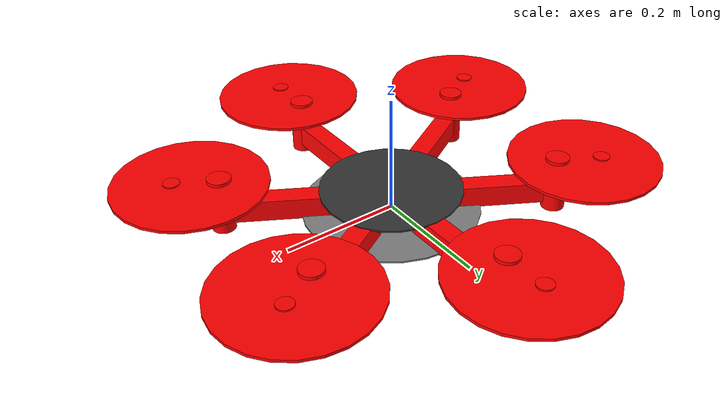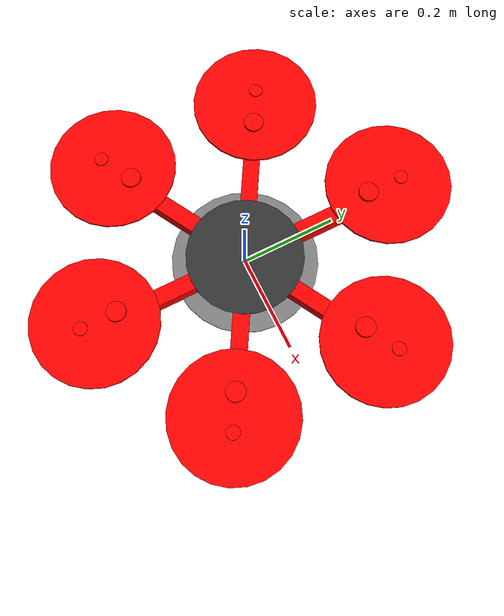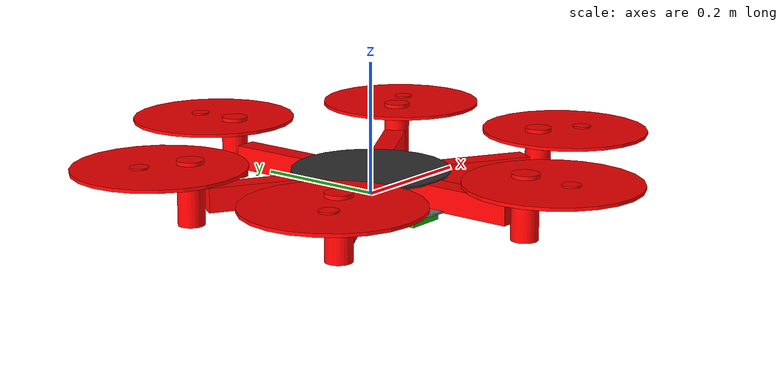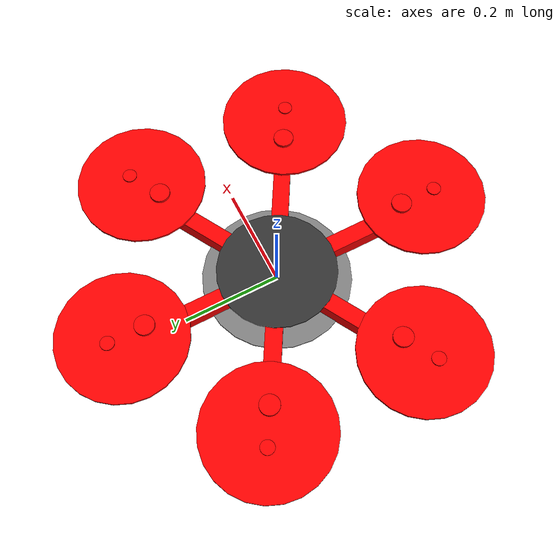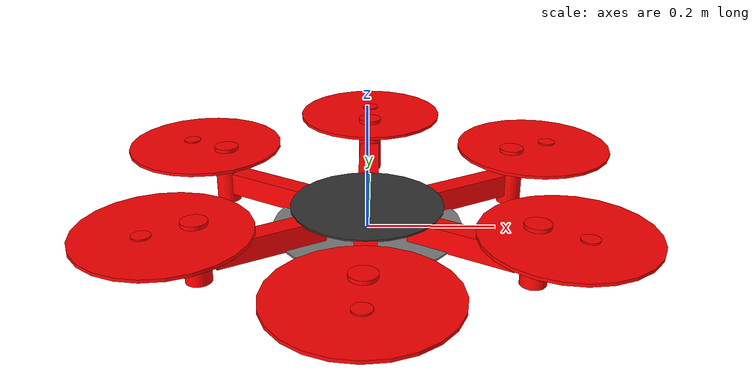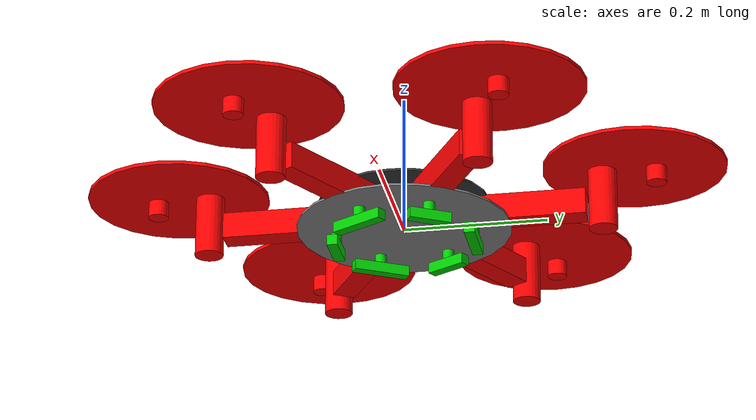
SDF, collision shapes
<?xml version="1.0" ?>
<!--F550 UAV model with Mavlink UDP port 14660-->
<sdf version='1.6'>
  <model name='f550_num2'>

<include>
      <uri>model://f550</uri>
      <name>f550</name>
      <pose>0 0 0 0 0 3.14</pose>
</include>

<plugin name='mavlink_interface' filename='librotors_gazebo_mavlink_interface.so'>
      <robotNamespace/>
      <imuSubTopic>/imu</imuSubTopic>
      <gpsSubTopic>/gps</gpsSubTopic>
      <mavlink_addr>INADDR_ANY</mavlink_addr>
      <mavlink_udp_port>14660</mavlink_udp_port>
      <motorSpeedCommandPubTopic>/gazebo/command/motor_speed</motorSpeedCommandPubTopic>
      <control_channels>
        <channel name='rotor1'>
          <input_index>0</input_index>
          <input_offset>0</input_offset>
          <input_scaling>1000</input_scaling>
          <zero_position_disarmed>0</zero_position_disarmed>
          <zero_position_armed>100</zero_position_armed>
          <joint_control_type>velocity</joint_control_type>
          <joint_name>p1</joint_name>
        </channel>
        <channel name='rotor2'>
          <input_index>1</input_index>
          <input_offset>0</input_offset>
          <input_scaling>1000</input_scaling>
          <zero_position_disarmed>0</zero_position_disarmed>
          <zero_position_armed>100</zero_position_armed>
          <joint_control_type>velocity</joint_control_type>
          <joint_name>p2</joint_name>
        </channel>
        <channel name='rotor3'>
          <input_index>2</input_index>
          <input_offset>0</input_offset>
          <input_scaling>1000</input_scaling>
          <zero_position_disarmed>0</zero_position_disarmed>
          <zero_position_armed>100</zero_position_armed>
          <joint_control_type>velocity</joint_control_type>
          <joint_name>p3</joint_name>
        </channel>
        <channel name='rotor4'>
          <input_index>3</input_index>
          <input_offset>0</input_offset>
          <input_scaling>1000</input_scaling>
          <zero_position_disarmed>0</zero_position_disarmed>
          <zero_position_armed>100</zero_position_armed>
          <joint_control_type>velocity</joint_control_type>
          <joint_name>p4</joint_name>
        </channel>
         <channel name='rotor5'>
          <input_index>4</input_index>
          <input_offset>0</input_offset>
          <input_scaling>1000</input_scaling>
          <zero_position_disarmed>0</zero_position_disarmed>
          <zero_position_armed>100</zero_position_armed>
          <joint_control_type>velocity</joint_control_type>
          <joint_name>p5</joint_name>
        </channel>
         <channel name='rotor6'>
          <input_index>5</input_index>
          <input_offset>0</input_offset>
          <input_scaling>1000</input_scaling>
          <zero_position_disarmed>0</zero_position_disarmed>
          <zero_position_armed>100</zero_position_armed>
          <joint_control_type>velocity</joint_control_type>
          <joint_name>p6</joint_name>
        </channel>
      </control_channels>
    </plugin>

    <include>
      <uri>model://wifi_reciver</uri>
      <name>wifi_rec</name>
      <pose>0 0 0 0 0 0</pose>
    </include>

    <joint name='/rx_joint' type='revolute'>
      <child>wifi_rec::link</child>
      <parent>f550::base_link</parent>
      <axis>
        <xyz>0 0 0</xyz>
        <limit>
          <upper>0</upper>
          <lower>0</lower>
        </limit>
      </axis>
    </joint>

    </model>
</sdf>

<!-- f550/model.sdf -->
<sdf version="1.9">
  <model name="f550">
    <static>false</static>
    <pose>0 0 0 0 0 0</pose>

<!-- ######################################## LOWER_PLATE # ######################################## -->
    <link name="base_link">
	<gravity>true</gravity>
	<pose>0 0 0.0015 0 0 0</pose>

      <inertial>
  <pose>0.00 0 -0.00 0 -0 0</pose>
        <mass>0.6</mass>
        <inertia>
          <ixx>0.011</ixx>
          <ixy>0</ixy>
          <ixz>0</ixz>
          <iyy>0.015</iyy>
          <iyz>0</iyz>
          <izz>0.021</izz>
        </inertia>
      </inertial>

      <collision name="base_link_collision">
        <geometry>
          <cylinder>
            <radius>0.15</radius>
            <length>0.003</length>
          </cylinder>
        </geometry>
      </collision>

      <visual name="base_link_visual">
        <geometry>
          <mesh>
            <scale>0.001 0.001 0.001</scale>
            <uri>file://f550/meshes/Lower_plate_CG.STL</uri>
          </mesh>
        </geometry>
        <material>
          <ambient>0.3 0.3 0.3 1</ambient>
          <diffuse>0.5 0.5 0.5 1</diffuse>
          <specular>0.8 0.8 0.8 1</specular>
        </material>
      </visual>

      <!-- IMU Sensor (modeled after ICM-42688-P) -->
      <sensor name="imu_sensor" type="imu">
        <pose>0 0 0.02 0 0 0</pose>
        <always_on>1</always_on>
        <update_rate>250</update_rate>
        <imu>
          <angular_velocity>
            <x>
              <noise type="gaussian">
                <mean>0</mean>
                <stddev>0.0003394</stddev>
                <dynamic_bias_stddev>3.8785e-05</dynamic_bias_stddev>
                <dynamic_bias_correlation_time>1000</dynamic_bias_correlation_time>
              </noise>
            </x>
            <y>
              <noise type="gaussian">
                <mean>0</mean>
                <stddev>0.0003394</stddev>
                <dynamic_bias_stddev>3.8785e-05</dynamic_bias_stddev>
                <dynamic_bias_correlation_time>1000</dynamic_bias_correlation_time>
              </noise>
            </y>
            <z>
              <noise type="gaussian">
                <mean>0</mean>
                <stddev>0.0003394</stddev>
                <dynamic_bias_stddev>3.8785e-05</dynamic_bias_stddev>
                <dynamic_bias_correlation_time>1000</dynamic_bias_correlation_time>
              </noise>
            </z>
          </angular_velocity>
          <linear_acceleration>
            <x>
              <noise type="gaussian">
                <mean>0</mean>
                <stddev>0.004</stddev>
                <dynamic_bias_stddev>0.006</dynamic_bias_stddev>
                <dynamic_bias_correlation_time>300</dynamic_bias_correlation_time>
              </noise>
            </x>
            <y>
              <noise type="gaussian">
                <mean>0</mean>
                <stddev>0.004</stddev>
                <dynamic_bias_stddev>0.006</dynamic_bias_stddev>
                <dynamic_bias_correlation_time>300</dynamic_bias_correlation_time>
              </noise>
            </y>
            <z>
              <noise type="gaussian">
                <mean>0</mean>
                <stddev>0.004</stddev>
                <dynamic_bias_stddev>0.006</dynamic_bias_stddev>
                <dynamic_bias_correlation_time>300</dynamic_bias_correlation_time>
              </noise>
            </z>
          </linear_acceleration>
        </imu>
      </sensor>

      <!-- Air Pressure Sensor (Barometer, modeled after BMP390) -->
      <sensor name="air_pressure_sensor" type="air_pressure">
        <always_on>1</always_on>
        <update_rate>50</update_rate>
        <air_pressure>
          <pressure>
            <noise type="gaussian">
              <mean>0</mean>
              <stddev>0.01</stddev>
            </noise>
          </pressure>
        </air_pressure>
      </sensor>

      <!-- GPS/NavSat Sensor (simplified for compatibility) -->
      <sensor name="navsat_sensor" type="navsat">
        <pose>0 0 0.03 0 0 0</pose>
        <always_on>1</always_on>
        <update_rate>30</update_rate>
      </sensor>

      <!-- Magnetometer Sensor (modeled after IIS2MDC) -->
      <sensor name="magnetometer_sensor" type="magnetometer">
        <pose>0 0 0.02 0 0 0</pose>
        <always_on>1</always_on>
        <update_rate>100</update_rate>
        <magnetometer>
          <!-- 3mgauss RMS: NOTE: noise is in tesla but sensor reports data in gauss -->
          <x>
            <noise type="gaussian">
              <stddev>0.0001</stddev>
            </noise>
          </x>
          <y>
            <noise type="gaussian">
              <stddev>0.0001</stddev>
            </noise>
          </y>
          <z>
            <noise type="gaussian">
              <stddev>0.0001</stddev>
            </noise>
          </z>
        </magnetometer>
      </sensor>      <!-- RGB Camera Sensor at ~15 Hz -->
    </link>
<!-- ####################################### /LOWER_PLATE # ######################################## -->

<!-- ######################################## TOP_PLATE ############################################ -->
    <link name="Top_plate_link">
	<gravity>true</gravity>
	<pose>0 0 0.0375 0 0 2.09439510239</pose>

      <inertial>
        <mass>0.1</mass>
        <inertia>
          <ixx>0.001</ixx>
          <ixy>0</ixy>
          <ixz>0</ixz>
          <iyy>0.001</iyy>
          <iyz>0</iyz>
          <izz>0.001</izz>
        </inertia>
      </inertial>

      <collision name="top_plate_collision">
        <geometry>
          <cylinder>
            <radius>0.12</radius>
            <length>0.003</length>
          </cylinder>
        </geometry>
      </collision>

      <visual name="visual_Top_plate">
        <geometry>
          <mesh>
            <scale>0.001 0.001 0.001</scale>
            <uri>file://f550/meshes/Top_plate_CG.STL</uri>
          </mesh>
        </geometry>
        <material>
          <ambient>0.1 0.1 0.1 1</ambient>
          <diffuse>0.2 0.2 0.2 1</diffuse>
          <specular>0.9 0.9 0.9 1</specular>
        </material>
      </visual>
    </link>

	<joint name='Lower_Top_joint' type='fixed'>
	  	<child>Top_plate_link</child>
	  	<parent>base_link</parent>
	</joint>
<!-- ####################################### /TOP_PLATE ############################################ -->

<!-- ##########################################  CAMERA  ########################################### -->

<!-- ##########################################  /CAMERA  ########################################## -->

<!-- ##########################################  IMU  ############################################## -->
    <link name='imu_link'>
      <pose>0 0 0 0 0 3.1415927</pose>
      <inertial>
        <pose>0 0 0 0 -0 0</pose>
        <mass>0.015</mass>
        <inertia>
          <ixx>1e-05</ixx>
          <ixy>0</ixy>
          <ixz>0</ixz>
          <iyy>1e-05</iyy>
          <iyz>0</iyz>
          <izz>1e-05</izz>
        </inertia>
      </inertial>

      <visual name="visual_imu">
	      <pose>0 0 0 0 0 3.1415927</pose>
        <geometry>
          <box>
			<size>0.01 0.02 0.02</size>
          </box>
        </geometry>
      </visual>
    </link>

    <joint name='imu_joint' type='fixed'>
      <child>imu_link</child>
      <parent>base_link</parent>
    </joint>
<!-- #########################################  /IMU  ############################################## -->

<!-- ############################################# ARM1 ############################################ -->
    <link name="Arm1_link">
	<gravity>true</gravity>
	<pose>0 0.1874 0.009875004 0 0 1.57079632679</pose>

	<inertial>
	<mass>0.1</mass>
		<inertia>
			<ixx>0.001</ixx>
			<ixy>0</ixy>
			<ixz>0</ixz>
			<iyy>0.001</iyy>
			<iyz>0</iyz>
			<izz>0.001</izz>
		</inertia>
	</inertial>

	<collision name="collision_Arm1_box">
		<pose>-0.02 0 0.009 0 0 0</pose>
		<geometry>
			<box>
				<size>0.175 0.034 0.037</size>
			</box>
		</geometry>
	</collision>

	<collision name="collision_Arm1_cyl">
		<pose>0.09 0 0.02 0 0 0</pose>
		<geometry>
			<cylinder>
				<length>0.097</length>
				<radius>0.02</radius>
			</cylinder>
		</geometry>
	</collision>

	<collision name="collision_Arm1_motor">
		<pose>0.165 0 0.05 0 0 0</pose>
		<geometry>
			<cylinder>
				<length>0.03</length>
				<radius>0.014</radius>
			</cylinder>
		</geometry>
	</collision>

		<visual name="visual_Arm1">
			<geometry>
				<mesh>
					<scale>0.001 0.001 0.001</scale>
					<uri>file://f550/meshes/Arm_CG.STL</uri>
				</mesh>
			</geometry>
			<material>
        <ambient>0.8 0.0 0.0 1</ambient>
        <diffuse>1.0 0.0 0.0 1</diffuse>
        <specular>0.5 0.5 0.5 1</specular>
      </material>
		</visual>
	</link>

	<joint name='Lower_Arm1_joint' type='fixed'>
	  	<child>Arm1_link</child>
	  	<parent>base_link</parent>
	</joint>
<!-- ############################################ /ARM1 ############################################ -->

<!-- ############################################# ARM2 ############################################ -->
    <link name="Arm2_link">
	<gravity>true</gravity>
	<pose>0.162293160669 0.0937 0.009875004 0 0 0.523598775598</pose>

      <inertial>
        <mass>0.1</mass>
        <inertia>
          <ixx>0.001</ixx>
          <ixy>0</ixy>
          <ixz>0</ixz>
          <iyy>0.001</iyy>
          <iyz>0</iyz>
          <izz>0.001</izz>
        </inertia>
      </inertial>

      <collision name="collision_Arm2_box">
        <pose>-0.02 0 0.009 0 0 0</pose>
        <geometry>
          <box>
            <size>0.175 0.034 0.037</size>
          </box>
        </geometry>
      </collision>

      <collision name="collision_Arm2_cyl">
        <pose>0.09 0 0.02 0 0 0</pose>
        <geometry>
          <cylinder>
            <length>0.097</length>
            <radius>0.02</radius>
          </cylinder>
        </geometry>
      </collision>

      <collision name="collision_Arm2_motor">
        <pose>0.165 0 0.05 0 0 0</pose>
        <geometry>
          <cylinder>
            <length>0.03</length>
            <radius>0.014</radius>
          </cylinder>
        </geometry>
      </collision>

      <visual name="visual_Arm2">
        <geometry>
          <mesh>
            <scale>0.001 0.001 0.001</scale>
            <uri>file://f550/meshes/Arm_CG.STL</uri>
          </mesh>
        </geometry>
        <material>
          <ambient>0.8 0.0 0.0 1</ambient>
          <diffuse>1.0 0.0 0.0 1</diffuse>
          <specular>0.5 0.5 0.5 1</specular>
        </material>
      </visual>
    </link>

	<joint name='Lower_Arm2_joint' type='fixed'>
	  	<child>Arm2_link</child>
	  	<parent>base_link</parent>
	</joint>
<!-- ############################################ /ARM2 ############################################ -->

<!-- ############################################# ARM3 ############################################ -->
    <link name="Arm3_link">
	<gravity>true</gravity>
	<pose>0.162293160669 -0.0937 0.009875004 0 0 -0.523598775598</pose>

      <inertial>
        <mass>0.1</mass>
        <inertia>
          <ixx>0.001</ixx>
          <ixy>0</ixy>
          <ixz>0</ixz>
          <iyy>0.001</iyy>
          <iyz>0</iyz>
          <izz>0.001</izz>
        </inertia>
      </inertial>

      <collision name="collision_Arm3_box">
        <pose>-0.02 0 0.009 0 0 0</pose>
        <geometry>
          <box>
            <size>0.175 0.034 0.037</size>
          </box>
        </geometry>
      </collision>

      <collision name="collision_Arm3_cyl">
        <pose>0.09 0 0.02 0 0 0</pose>
        <geometry>
          <cylinder>
            <length>0.097</length>
            <radius>0.02</radius>
          </cylinder>
        </geometry>
      </collision>

      <collision name="collision_Arm3_motor">
        <pose>0.165 0 0.05 0 0 0</pose>
        <geometry>
          <cylinder>
            <length>0.03</length>
            <radius>0.014</radius>
          </cylinder>
        </geometry>
      </collision>

      <visual name="visual_Arm3">
        <geometry>
          <mesh>
            <scale>0.001 0.001 0.001</scale>
            <uri>file://f550/meshes/Arm_CG.STL</uri>
          </mesh>
        </geometry>
        <material>
          <ambient>0.8 0.0 0.0 1</ambient>
          <diffuse>1.0 0.0 0.0 1</diffuse>
          <specular>0.5 0.5 0.5 1</specular>
        </material>
      </visual>
    </link>

	<joint name='Lower_Arm3_joint' type='fixed'>
	  	<child>Arm3_link</child>
	  	<parent>base_link</parent>
	</joint>
<!-- ############################################ /ARM3 ############################################ -->

<!-- ############################################# ARM4 ############################################ -->
    <link name="Arm4_link">
	<gravity>true</gravity>
	<pose>0 -0.1874 0.009875004 0 0 -1.57079632679</pose>

      <inertial>
        <mass>0.1</mass>
        <inertia>
          <ixx>0.001</ixx>
          <ixy>0</ixy>
          <ixz>0</ixz>
          <iyy>0.001</iyy>
          <iyz>0</iyz>
          <izz>0.001</izz>
        </inertia>
      </inertial>

      <collision name="collision_Arm4_box">
        <pose>-0.02 0 0.009 0 0 0</pose>
        <geometry>
          <box>
            <size>0.175 0.034 0.037</size>
          </box>
        </geometry>
      </collision>

      <collision name="collision_Arm4_cyl">
        <pose>0.09 0 0.02 0 0 0</pose>
        <geometry>
          <cylinder>
            <length>0.097</length>
            <radius>0.02</radius>
          </cylinder>
        </geometry>
      </collision>

      <collision name="collision_Arm4_motor">
        <pose>0.165 0 0.05 0 0 0</pose>
        <geometry>
          <cylinder>
            <length>0.03</length>
            <radius>0.014</radius>
          </cylinder>
        </geometry>
      </collision>

      <visual name="visual_Arm4">
        <geometry>
          <mesh>
            <scale>0.001 0.001 0.001</scale>
            <uri>file://f550/meshes/Arm_CG.STL</uri>
          </mesh>
        </geometry>
        <material>
          <ambient>0.8 0.0 0.0 1</ambient>
          <diffuse>1.0 0.0 0.0 1</diffuse>
          <specular>0.5 0.5 0.5 1</specular>
        </material>
      </visual>
    </link>

	<joint name='Lower_Arm4_joint' type='fixed'>
	  	<child>Arm4_link</child>
	  	<parent>base_link</parent>
	</joint>
<!-- ############################################ /ARM4 ############################################ -->

<!-- ############################################# ARM5 ############################################ -->
    <link name="Arm5_link">
	<gravity>true</gravity>
	<pose>-0.162293160669 -0.0937 0.009875004 0 0 3.66519142919</pose>

      <inertial>
        <mass>0.1</mass>
        <inertia>
          <ixx>0.001</ixx>
          <ixy>0</ixy>
          <ixz>0</ixz>
          <iyy>0.001</iyy>
          <iyz>0</iyz>
          <izz>0.001</izz>
        </inertia>
      </inertial>

      <collision name="collision_Arm5_box">
        <pose>-0.02 0 0.009 0 0 0</pose>
        <geometry>
          <box>
            <size>0.175 0.034 0.037</size>
          </box>
        </geometry>
      </collision>

      <collision name="collision_Arm5_cyl">
        <pose>0.09 0 0.02 0 0 0</pose>
        <geometry>
          <cylinder>
            <length>0.097</length>
            <radius>0.02</radius>
          </cylinder>
        </geometry>
      </collision>

      <collision name="collision_Arm5_motor">
        <pose>0.165 0 0.05 0 0 0</pose>
        <geometry>
          <cylinder>
            <length>0.03</length>
            <radius>0.014</radius>
          </cylinder>
        </geometry>
      </collision>

      <visual name="visual_Arm5">
        <geometry>
          <mesh>
            <scale>0.001 0.001 0.001</scale>
            <uri>file://f550/meshes/Arm_CG.STL</uri>
          </mesh>
        </geometry>
        <material>
          <ambient>0.8 0.0 0.0 1</ambient>
          <diffuse>1.0 0.0 0.0 1</diffuse>
          <specular>0.5 0.5 0.5 1</specular>
        </material>
      </visual>
    </link>

	<joint name='Lower_Arm5_joint' type='fixed'>
	  	<child>Arm5_link</child>
	  	<parent>base_link</parent>
	</joint>
<!-- ############################################ /ARM5 ############################################ -->

<!-- ############################################# ARM6 ############################################ -->
    <link name="Arm6_link">
	<gravity>true</gravity>
	<pose>-0.162293160669 0.0937 0.009875004 0 0 2.61799387799</pose>

      <inertial>
        <mass>0.1</mass>
        <inertia>
          <ixx>0.001</ixx>
          <ixy>0</ixy>
          <ixz>0</ixz>
          <iyy>0.001</iyy>
          <iyz>0</iyz>
          <izz>0.001</izz>
        </inertia>
      </inertial>

      <collision name="collision_Arm6_box">
        <pose>-0.02 0 0.009 0 0 0</pose>
        <geometry>
          <box>
            <size>0.175 0.034 0.037</size>
          </box>
        </geometry>
      </collision>

      <collision name="collision_Arm6_cyl">
        <pose>0.09 0 0.02 0 0 0</pose>
        <geometry>
          <cylinder>
            <length>0.097</length>
            <radius>0.02</radius>
          </cylinder>
        </geometry>
      </collision>

      <collision name="collision_Arm6_motor">
        <pose>0.165 0 0.05 0 0 0</pose>
        <geometry>
          <cylinder>
            <length>0.03</length>
            <radius>0.014</radius>
          </cylinder>
        </geometry>
      </collision>

      <visual name="visual_Arm6">
        <geometry>
          <mesh>
            <scale>0.001 0.001 0.001</scale>
            <uri>file://f550/meshes/Arm_CG.STL</uri>
          </mesh>
        </geometry>
        <material>
          <ambient>0.8 0.0 0.0 1</ambient>
          <diffuse>1.0 0.0 0.0 1</diffuse>
          <specular>0.5 0.5 0.5 1</specular>
        </material>
      </visual>
    </link>

	<joint name='Lower_Arm6_joint' type='fixed'>
	  	<child>Arm6_link</child>
	  	<parent>base_link</parent>
	</joint>
<!-- ############################################ /ARM6 ############################################ -->

<!-- #########################################  ROTOR0  ############################################ -->
<link name='rotor_0'>
  <pose>-0.279726205 0.1615 0.07 0 0 2.09439510239</pose>
      <inertial>
        <mass>0.005</mass>
        <inertia>
          <ixx>9.75e-07</ixx>
          <ixy>0</ixy>
          <ixz>0</ixz>
          <iyy>0.000273104</iyy>
          <iyz>0</iyz>
          <izz>0.000274004</izz>
        </inertia>
      </inertial>

      <collision name='rotor_0_collision'>
        <geometry>
          <cylinder>
            <length>0.005</length>
            <radius>0.128</radius>
          </cylinder>
        </geometry>
        <surface>
          <contact>
            <collide_bitmask>0x00</collide_bitmask>
            <ode/>
          </contact>
          <friction>
            <ode/>
          </friction>
        </surface>
      </collision>

      <visual name='rotor_0_visual'>
        <geometry>
          <mesh>
            <scale>0.001 0.001 0.001</scale>
            <uri>file://f550/meshes/prop_cw_CG.stl</uri>
          </mesh>
        </geometry>
        <material>
          <ambient>0.8 0.0 0.0 1</ambient>
          <diffuse>1.0 0.0 0.0 1</diffuse>
          <specular>0.5 0.5 0.5 1</specular>
        </material>
      </visual>
    </link>

    <joint name='rotor_0_joint' type='revolute'>
      <child>rotor_0</child>
      <parent>base_link</parent>
      <axis>
  <xyz expressed_in="__model__">0 0 1</xyz>
        <limit>
          <lower>-1e+16</lower>
          <upper>1e+16</upper>
          <!-- Increased effort limit to avoid artificial torque saturation during spin-up/control -->
          <effort>100000</effort>
          <!-- Set a large positive velocity limit to avoid artificial clamping -->
          <velocity>4000</velocity>
        </limit>
        <dynamics>
          <damping>0.005</damping>
        </dynamics>
      </axis>
      <physics>
        <ode>
          <implicit_spring_damper>1</implicit_spring_damper>
        </ode>
      </physics>
    </joint>
<!-- ########################################  /ROTOR0  ############################################ -->

<!-- #########################################  ROTOR1  ############################################ -->
<link name='rotor_1'>
  <pose>0.279726205 -0.1615 0.07 0 0 -2.09439510239</pose>
      <inertial>
        <mass>0.005</mass>
        <inertia>
          <ixx>9.75e-07</ixx>
          <ixy>0</ixy>
          <ixz>0</ixz>
          <iyy>0.000273104</iyy>
          <iyz>0</iyz>
          <izz>0.000274004</izz>
        </inertia>
      </inertial>

      <collision name='rotor_1_collision'>
        <geometry>
          <cylinder>
            <length>0.005</length>
            <radius>0.128</radius>
          </cylinder>
        </geometry>
        <surface>
          <contact>
            <collide_bitmask>0x00</collide_bitmask>
            <ode/>
          </contact>
          <friction>
            <ode/>
          </friction>
        </surface>
      </collision>

      <visual name='rotor_1_visual'>
        <geometry>
          <mesh>
            <scale>0.001 0.001 0.001</scale>
            <uri>file://f550/meshes/prop_ccw_CG.stl</uri>
          </mesh>
        </geometry>
        <material>
          <ambient>0.8 0.0 0.0 1</ambient>
          <diffuse>1.0 0.0 0.0 1</diffuse>
          <specular>0.5 0.5 0.5 1</specular>
        </material>
      </visual>
    </link>

    <joint name='rotor_1_joint' type='revolute'>
      <child>rotor_1</child>
      <parent>base_link</parent>
      <axis>
  <xyz expressed_in="__model__">0 0 1</xyz>
        <limit>
          <lower>-1e+16</lower>
          <upper>1e+16</upper>
          <effort>100000</effort>
          <velocity>4000</velocity>
        </limit>
        <dynamics>
          <damping>0.005</damping>
        </dynamics>
      </axis>
      <physics>
        <ode>
          <implicit_spring_damper>1</implicit_spring_damper>
        </ode>
      </physics>
    </joint>
<!-- ########################################  /ROTOR1  ############################################ -->

<!-- #########################################  ROTOR2  ############################################ -->
<link name='rotor_2'>
  <pose>-0.279726205 -0.1615 0.07 0 0 2.09439510239</pose>
      <inertial>
        <mass>0.005</mass>
        <inertia>
          <ixx>9.75e-07</ixx>
          <ixy>0</ixy>
          <ixz>0</ixz>
          <iyy>0.000273104</iyy>
          <iyz>0</iyz>
          <izz>0.000274004</izz>
        </inertia>
      </inertial>

      <collision name='rotor_2_collision'>
        <geometry>
          <cylinder>
            <length>0.005</length>
            <radius>0.128</radius>
          </cylinder>
        </geometry>
        <surface>
          <contact>
            <collide_bitmask>0x00</collide_bitmask>
            <ode/>
          </contact>
          <friction>
            <ode/>
          </friction>
        </surface>
      </collision>

      <visual name='rotor_2_visual'>
        <geometry>
          <mesh>
            <scale>0.001 0.001 0.001</scale>
            <uri>file://f550/meshes/prop_ccw_CG.stl</uri>
          </mesh>
        </geometry>
        <material>
          <ambient>0.8 0.0 0.0 1</ambient>
          <diffuse>1.0 0.0 0.0 1</diffuse>
          <specular>0.5 0.5 0.5 1</specular>
        </material>
      </visual>
    </link>

    <joint name='rotor_2_joint' type='revolute'>
      <child>rotor_2</child>
      <parent>base_link</parent>
      <axis>
  <xyz expressed_in="__model__">0 0 1</xyz>
        <limit>
          <lower>-1e+16</lower>
          <upper>1e+16</upper>
          <effort>100000</effort>
          <velocity>4000</velocity>
        </limit>
        <dynamics>
          <damping>0.005</damping>
        </dynamics>
      </axis>
      <physics>
        <ode>
          <implicit_spring_damper>1</implicit_spring_damper>
        </ode>
      </physics>
    </joint>
<!-- ########################################  /ROTOR2  ############################################ -->

<!-- #########################################  ROTOR3  ############################################ -->
<link name='rotor_3'>
  <pose>0.279726205 0.1615 0.07 0 0 0</pose>
      <inertial>
        <mass>0.005</mass>
        <inertia>
          <ixx>9.75e-07</ixx>
          <ixy>0</ixy>
          <ixz>0</ixz>
          <iyy>0.000273104</iyy>
          <iyz>0</iyz>
          <izz>0.000274004</izz>
        </inertia>
      </inertial>

      <collision name='rotor_3_collision'>
        <geometry>
          <cylinder>
            <length>0.005</length>
            <radius>0.128</radius>
          </cylinder>
        </geometry>
        <surface>
          <contact>
            <collide_bitmask>0x00</collide_bitmask>
            <ode/>
          </contact>
          <friction>
            <ode/>
          </friction>
        </surface>
      </collision>

      <visual name='rotor_3_visual'>
        <geometry>
          <mesh>
            <scale>0.001 0.001 0.001</scale>
            <uri>file://f550/meshes/prop_cw_CG.stl</uri>
          </mesh>
        </geometry>
        <material>
          <ambient>0.8 0.0 0.0 1</ambient>
          <diffuse>1.0 0.0 0.0 1</diffuse>
          <specular>0.5 0.5 0.5 1</specular>
        </material>
      </visual>
    </link>

    <joint name='rotor_3_joint' type='revolute'>
      <child>rotor_3</child>
      <parent>base_link</parent>
      <axis>
  <xyz expressed_in="__model__">0 0 1</xyz>
        <limit>
          <lower>-1e+16</lower>
          <upper>1e+16</upper>
          <effort>100000</effort>
          <velocity>4000</velocity>
        </limit>
        <dynamics>
          <damping>0.005</damping>
        </dynamics>
      </axis>
      <physics>
        <ode>
          <implicit_spring_damper>1</implicit_spring_damper>
        </ode>
      </physics>
    </joint>
<!-- ########################################  /ROTOR3  ############################################ -->

<!-- #########################################  ROTOR4  ############################################ -->
<link name='rotor_4'>
  <pose>0 0.323 0.07 0 0 0</pose>
      <inertial>
        <mass>0.005</mass>
        <inertia>
          <ixx>9.75e-07</ixx>
          <ixy>0</ixy>
          <ixz>0</ixz>
          <iyy>0.000273104</iyy>
          <iyz>0</iyz>
          <izz>0.000274004</izz>
        </inertia>
      </inertial>

      <collision name='rotor_4_collision'>
        <geometry>
          <cylinder>
            <length>0.005</length>
            <radius>0.128</radius>
          </cylinder>
        </geometry>
        <surface>
          <contact>
            <collide_bitmask>0x00</collide_bitmask>
            <ode/>
          </contact>
          <friction>
            <ode/>
          </friction>
        </surface>
      </collision>

      <visual name='rotor_4_visual'>
        <geometry>
          <mesh>
            <scale>0.001 0.001 0.001</scale>
            <uri>file://f550/meshes/prop_ccw_CG.stl</uri>
          </mesh>
        </geometry>
        <material>
          <ambient>0.8 0.0 0.0 1</ambient>
          <diffuse>1.0 0.0 0.0 1</diffuse>
          <specular>0.5 0.5 0.5 1</specular>
        </material>
      </visual>
    </link>

    <joint name='rotor_4_joint' type='revolute'>
      <child>rotor_4</child>
      <parent>base_link</parent>
      <axis>
  <xyz expressed_in="__model__">0 0 1</xyz>
        <limit>
          <lower>-1e+16</lower>
          <upper>1e+16</upper>
          <effort>100000</effort>
          <velocity>4000</velocity>
        </limit>
        <dynamics>
          <damping>0.005</damping>
        </dynamics>
      </axis>
      <physics>
        <ode>
          <implicit_spring_damper>1</implicit_spring_damper>
        </ode>
      </physics>
    </joint>
<!-- ########################################  /ROTOR4  ############################################ -->

<!-- #########################################  ROTOR5  ############################################ -->
<link name='rotor_5'>
  <pose>0 -0.323 0.07 0 0 -2.09439510239</pose>
      <inertial>
        <mass>0.005</mass>
        <inertia>
          <ixx>9.75e-07</ixx>
          <ixy>0</ixy>
          <ixz>0</ixz>
          <iyy>0.000273104</iyy>
          <iyz>0</iyz>
          <izz>0.000274004</izz>
        </inertia>
      </inertial>

      <collision name='rotor_5_collision'>
        <geometry>
          <cylinder>
            <length>0.005</length>
            <radius>0.128</radius>
          </cylinder>
        </geometry>
        <surface>
          <contact>
            <collide_bitmask>0x00</collide_bitmask>
            <ode/>
          </contact>
          <friction>
            <ode/>
          </friction>
        </surface>
      </collision>

      <visual name='rotor_5_visual'>
        <geometry>
          <mesh>
            <scale>0.001 0.001 0.001</scale>
            <!-- Use clockwise prop mesh to alternate torque (rotors 0,3,5 cw; 1,2,4 ccw) -->
            <uri>file://f550/meshes/prop_cw_CG.stl</uri>
          </mesh>
        </geometry>
        <material>
          <ambient>0.8 0.0 0.0 1</ambient>
          <diffuse>1.0 0.0 0.0 1</diffuse>
          <specular>0.5 0.5 0.5 1</specular>
        </material>
      </visual>
    </link>

    <joint name='rotor_5_joint' type='revolute'>
      <child>rotor_5</child>
      <parent>base_link</parent>
      <axis>
  <xyz expressed_in="__model__">0 0 1</xyz>
        <limit>
          <lower>-1e+16</lower>
          <upper>1e+16</upper>
          <effort>100000</effort>
          <velocity>4000</velocity>
        </limit>
        <dynamics>
          <damping>0.005</damping>
        </dynamics>
      </axis>
      <physics>
        <ode>
          <implicit_spring_damper>1</implicit_spring_damper>
        </ode>
      </physics>
    </joint>
<!-- ########################################  /ROTOR5  ############################################ -->

<!-- ######################################### grip1 ############################################### -->

        <link name="cylinder1">
            <pose>0 -0.0967 0 0 0 0</pose>
            <inertial>
                <mass>0.01</mass>
                <inertia>
                    <ixx>0.01</ixx>
                    <ixy>0</ixy>
                    <ixz>0</ixz>
                    <iyy>0.01</iyy>
                    <iyz>0</iyz>
                    <izz>0.01</izz>
                </inertia>
            </inertial>

            <collision name="collision">
                <geometry>
                    <cylinder>
                        <radius>0.008</radius>
                        <length>0.025</length>
                    </cylinder>
                </geometry>
            </collision>

			<visual name="visual">
				<geometry>
					<mesh>
						<scale>0.001 0.001 0.001</scale>
						<uri>file://f550/meshes/cylinder.stl</uri>
					</mesh>
				</geometry>
        <material>
          <ambient>0.0 0.6 0.0 1</ambient>
          <diffuse>0.0 0.8 0.0 1</diffuse>
          <specular>0.4 0.4 0.4 1</specular>
        </material>
			</visual>
			</link>

        <joint name="base_link_cylinder1" type="fixed">
            <child>cylinder1</child>
            <parent>base_link</parent>
        </joint>

        <link name="grip1">
            <pose>0 -0.0967 -0.02 0 0 0</pose>
            <inertial>
                <mass>0.01</mass>
                <inertia>
                    <ixx>0.01</ixx>
                    <ixy>0</ixy>
                    <ixz>0</ixz>
                    <iyy>0.01</iyy>
                    <iyz>0</iyz>
                    <izz>0.01</izz>
                </inertia>
            </inertial>

            <collision name="collision">
				<geometry>
					<box>
						<size>0.08 0.015 0.015</size>
					</box>
				</geometry>
				<surface>
					<contact>
						<ode>
							<min_depth>0.001</min_depth>
						</ode>
					</contact>
					<friction>
						<ode>
							<mu>50</mu>
							<mu2>50</mu2>
						</ode>
					</friction>
				</surface>
            </collision>

            <visual name="visual">
				<geometry>
					<mesh>
						<scale>0.001 0.001 0.001</scale>
						<uri>file://f550/meshes/grip_long.stl</uri>
					</mesh>
				</geometry>
        <material>
          <ambient>0.0 0.6 0.0 1</ambient>
          <diffuse>0.0 0.8 0.0 1</diffuse>
          <specular>0.4 0.4 0.4 1</specular>
        </material>
            </visual>
        </link>

        <joint name="cylinder_grip1" type="revolute">
            <pose>0 0 0 0 0 0</pose>
            <child>grip1</child>
            <parent>cylinder1</parent>
            <axis>
                <xyz>1 0 0</xyz>
				<limit>
					<lower>0.00</lower>
					<upper>1.570</upper>
					<velocity>1</velocity>
				</limit>
				<dynamics>
					<damping>5</damping>
					<friction>0.5</friction>
				</dynamics>
			</axis>
      <physics>
        <ode>
          <implicit_spring_damper>1</implicit_spring_damper>
        </ode>
      </physics>
        </joint>

<!-- ######################################### /grip1 ############################################### -->

<!-- ######################################### grip2 ############################################### -->

        <link name="cylinder2">
            <pose>0.0837446656546 0.04835 0 0 0 2.09439510239</pose>
            <inertial>
                <mass>0.01</mass>
                <inertia>
                    <ixx>0.01</ixx>
                    <ixy>0</ixy>
                    <ixz>0</ixz>
                    <iyy>0.01</iyy>
                    <iyz>0</iyz>
                    <izz>0.01</izz>
                </inertia>
            </inertial>

            <collision name="collision">
                <geometry>
                    <cylinder>
                        <radius>0.008</radius>
                        <length>0.025</length>
                    </cylinder>
                </geometry>
            </collision>

			<visual name="visual">
				<geometry>
					<mesh>
						<scale>0.001 0.001 0.001</scale>
						<uri>file://f550/meshes/cylinder.stl</uri>
					</mesh>
				</geometry>
        <material>
          <ambient>0.0 0.6 0.0 1</ambient>
          <diffuse>0.0 0.8 0.0 1</diffuse>
          <specular>0.4 0.4 0.4 1</specular>
        </material>
			</visual>
			</link>

        <joint name="base_link_cylinder2" type="fixed">
            <child>cylinder2</child>
            <parent>base_link</parent>
        </joint>

        <link name="grip2">
            <pose>0.0837446656546 0.04835 -0.02 0 0 2.09439510239</pose>
            <inertial>
                <mass>0.01</mass>
                <inertia>
                    <ixx>0.01</ixx>
                    <ixy>0</ixy>
                    <ixz>0</ixz>
                    <iyy>0.01</iyy>
                    <iyz>0</iyz>
                    <izz>0.01</izz>
                </inertia>
            </inertial>

            <collision name="collision">
				<geometry>
					<box>
						<size>0.08 0.015 0.015</size>
					</box>
				</geometry>
				<surface>
					<contact>
						<ode>
							<min_depth>0.001</min_depth>
						</ode>
					</contact>
					<friction>
						<ode>
							<mu>50</mu>
							<mu2>50</mu2>
						</ode>
					</friction>
				</surface>
            </collision>

            <visual name="visual">
				<geometry>
					<mesh>
						<scale>0.001 0.001 0.001</scale>
						<uri>file://f550/meshes/grip_long.stl</uri>
					</mesh>
				</geometry>
        <material>
          <ambient>0.0 0.6 0.0 1</ambient>
          <diffuse>0.0 0.8 0.0 1</diffuse>
          <specular>0.4 0.4 0.4 1</specular>
        </material>
            </visual>
        </link>

        <joint name="cylinder_grip2" type="revolute">
            <pose>0 0 0 0 0 0</pose>
            <child>grip2</child>
            <parent>cylinder2</parent>
            <axis>
                <xyz>1 0 0</xyz>
				<limit>
					<lower>0.00</lower>
					<upper>1.570</upper>
					<velocity>1</velocity>
				</limit>
				<dynamics>
					<damping>5</damping>
					<friction>0.5</friction>
				</dynamics>
			</axis>
      <physics>
        <ode>
          <implicit_spring_damper>1</implicit_spring_damper>
        </ode>
      </physics>
        </joint>

<!-- ######################################### /grip2 ############################################### -->

<!-- ######################################### grip3 ############################################### -->

        <link name="cylinder3">
            <pose>0.0837446656546 -0.04835 0 0 0 1.0471975512</pose>
            <inertial>
                <mass>0.01</mass>
                <inertia>
                    <ixx>0.01</ixx>
                    <ixy>0</ixy>
                    <ixz>0</ixz>
                    <iyy>0.01</iyy>
                    <iyz>0</iyz>
                    <izz>0.01</izz>
                </inertia>
            </inertial>

            <collision name="collision">
                <geometry>
                    <cylinder>
                        <radius>0.008</radius>
                        <length>0.025</length>
                    </cylinder>
                </geometry>
            </collision>

			<visual name="visual">
				<geometry>
					<mesh>
						<scale>0.001 0.001 0.001</scale>
						<uri>file://f550/meshes/cylinder.stl</uri>
					</mesh>
				</geometry>
        <material>
          <ambient>0.0 0.6 0.0 1</ambient>
          <diffuse>0.0 0.8 0.0 1</diffuse>
          <specular>0.4 0.4 0.4 1</specular>
        </material>
			</visual>
			</link>

        <joint name="base_link_cylinder3" type="fixed">
            <child>cylinder3</child>
            <parent>base_link</parent>
        </joint>

        <link name="grip3">
            <pose>0.0837446656546 -0.04835 -0.02 0 0 1.0471975512</pose>
            <inertial>
                <mass>0.01</mass>
                <inertia>
                    <ixx>0.01</ixx>
                    <ixy>0</ixy>
                    <ixz>0</ixz>
                    <iyy>0.01</iyy>
                    <iyz>0</iyz>
                    <izz>0.01</izz>
                </inertia>
            </inertial>

            <collision name="collision">
				<geometry>
					<box>
						<size>0.06 0.015 0.015</size>
					</box>
				</geometry>
				<surface>
					<contact>
						<ode>
							<min_depth>0.001</min_depth>
						</ode>
					</contact>
					<friction>
						<ode>
							<mu>50</mu>
							<mu2>50</mu2>
						</ode>
					</friction>
				</surface>
            </collision>

            <visual name="visual">
				<geometry>
					<mesh>
						<scale>0.001 0.001 0.001</scale>
						<uri>file://f550/meshes/grip.stl</uri>
					</mesh>
				</geometry>
        <material>
          <ambient>0.0 0.6 0.0 1</ambient>
          <diffuse>0.0 0.8 0.0 1</diffuse>
          <specular>0.4 0.4 0.4 1</specular>
        </material>
            </visual>
        </link>

        <joint name="cylinder_grip3" type="revolute">
            <pose>0 0 0 0 0 0</pose>
            <child>grip3</child>
            <parent>cylinder3</parent>
            <axis>
                <xyz>1 0 0</xyz>
				<limit>
					<lower>0.00</lower>
					<upper>1.570</upper>
					<velocity>1</velocity>
				</limit>
				<dynamics>
					<damping>5</damping>
					<friction>0.5</friction>
				</dynamics>
			</axis>
      <physics>
        <ode>
          <implicit_spring_damper>1</implicit_spring_damper>
        </ode>
      </physics>
        </joint>

<!-- ######################################### /grip3 ############################################### -->

<!-- ######################################### grip4 ############################################### -->

        <link name="cylinder4">
            <pose>0 0.0967 0 0 0 0</pose>
            <inertial>
                <mass>0.01</mass>
                <inertia>
                    <ixx>0.01</ixx>
                    <ixy>0</ixy>
                    <ixz>0</ixz>
                    <iyy>0.01</iyy>
                    <iyz>0</iyz>
                    <izz>0.01</izz>
                </inertia>
            </inertial>

            <collision name="collision">
                <geometry>
                    <cylinder>
                        <radius>0.008</radius>
                        <length>0.025</length>
                    </cylinder>
                </geometry>
            </collision>

			<visual name="visual">
				<geometry>
					<mesh>
						<scale>0.001 0.001 0.001</scale>
						<uri>file://f550/meshes/cylinder.stl</uri>
					</mesh>
				</geometry>
        <material>
          <ambient>0.0 0.6 0.0 1</ambient>
          <diffuse>0.0 0.8 0.0 1</diffuse>
          <specular>0.4 0.4 0.4 1</specular>
        </material>
			</visual>
			</link>

        <joint name="base_link_cylinder4" type="fixed">
            <child>cylinder4</child>
            <parent>base_link</parent>
        </joint>

        <link name="grip4">
            <pose>0 0.0967 -0.02 0 0 3.14159265359</pose>
            <inertial>
                <mass>0.01</mass>
                <inertia>
                    <ixx>0.01</ixx>
                    <ixy>0</ixy>
                    <ixz>0</ixz>
                    <iyy>0.01</iyy>
                    <iyz>0</iyz>
                    <izz>0.01</izz>
                </inertia>
            </inertial>

            <collision name="collision">
				<geometry>
					<box>
						<size>0.06 0.015 0.015</size>
					</box>
				</geometry>
				<surface>
					<contact>
						<ode>
							<min_depth>0.001</min_depth>
						</ode>
					</contact>
					<friction>
						<ode>
							<mu>50</mu>
							<mu2>50</mu2>
						</ode>
					</friction>
				</surface>
            </collision>

            <visual name="visual">
				<geometry>
					<mesh>
						<scale>0.001 0.001 0.001</scale>
						<uri>file://f550/meshes/grip.stl</uri>
					</mesh>
				</geometry>
        <material>
          <ambient>0.0 0.6 0.0 1</ambient>
          <diffuse>0.0 0.8 0.0 1</diffuse>
          <specular>0.4 0.4 0.4 1</specular>
        </material>
            </visual>
        </link>

        <joint name="cylinder_grip4" type="revolute">
            <pose>0 0 0 0 0 0</pose>
            <child>grip4</child>
            <parent>cylinder4</parent>
            <axis>
                <xyz>1 0 0</xyz>
				<limit>
					<lower>0.00</lower>
					<upper>1.570</upper>
					<velocity>1</velocity>
				</limit>
				<dynamics>
					<damping>5</damping>
					<friction>0.5</friction>
				</dynamics>
			</axis>
      <physics>
        <ode>
          <implicit_spring_damper>1</implicit_spring_damper>
        </ode>
      </physics>
        </joint>

<!-- ######################################### /grip4 ############################################### -->

<!-- ######################################### grip5 ############################################### -->

        <link name="cylinder5">
            <pose>-0.0837446656546 0.04835 0 0 0 4.18879020479</pose>
            <inertial>
                <mass>0.01</mass>
                <inertia>
                    <ixx>0.01</ixx>
                    <ixy>0</ixy>
                    <ixz>0</ixz>
                    <iyy>0.01</iyy>
                    <iyz>0</iyz>
                    <izz>0.01</izz>
                </inertia>
            </inertial>

            <collision name="collision">
                <geometry>
                    <cylinder>
                        <radius>0.008</radius>
                        <length>0.025</length>
                    </cylinder>
                </geometry>
            </collision>

			<visual name="visual">
				<geometry>
					<mesh>
						<scale>0.001 0.001 0.001</scale>
						<uri>file://f550/meshes/cylinder.stl</uri>
					</mesh>
				</geometry>
        <material>
          <ambient>0.0 0.6 0.0 1</ambient>
          <diffuse>0.0 0.8 0.0 1</diffuse>
          <specular>0.4 0.4 0.4 1</specular>
        </material>
			</visual>
			</link>

        <joint name="base_link_cylinder5" type="fixed">
            <child>cylinder5</child>
            <parent>base_link</parent>
        </joint>

        <link name="grip5">
            <pose>-0.0837446656546 0.04835 -0.02 0 0 4.18879020479</pose>
            <inertial>
                <mass>0.01</mass>
                <inertia>
                    <ixx>0.01</ixx>
                    <ixy>0</ixy>
                    <ixz>0</ixz>
                    <iyy>0.01</iyy>
                    <iyz>0</iyz>
                    <izz>0.01</izz>
                </inertia>
            </inertial>

            <collision name="collision">
				<geometry>
					<box>
						<size>0.08 0.015 0.015</size>
					</box>
				</geometry>
				<surface>
					<contact>
						<ode>
							<min_depth>0.001</min_depth>
						</ode>
					</contact>
					<friction>
						<ode>
							<mu>50</mu>
							<mu2>50</mu2>
						</ode>
					</friction>
				</surface>
            </collision>

            <visual name="visual">
				<geometry>
					<mesh>
						<scale>0.001 0.001 0.001</scale>
						<uri>file://f550/meshes/grip_long.stl</uri>
					</mesh>
				</geometry>
        <material>
          <ambient>0.0 0.6 0.0 1</ambient>
          <diffuse>0.0 0.8 0.0 1</diffuse>
          <specular>0.4 0.4 0.4 1</specular>
        </material>
            </visual>
        </link>

        <joint name="cylinder_grip5" type="revolute">
            <pose>0 0 0 0 0 0</pose>
            <child>grip5</child>
            <parent>cylinder5</parent>
            <axis>
                <xyz>1 0 0</xyz>
				<limit>
					<lower>0.00</lower>
					<upper>1.570</upper>
					<velocity>1</velocity>
				</limit>
				<dynamics>
					<damping>5</damping>
					<friction>0.5</friction>
				</dynamics>
			</axis>
      <physics>
        <ode>
          <implicit_spring_damper>1</implicit_spring_damper>
        </ode>
      </physics>
        </joint>

<!-- ######################################### /grip5 ############################################### -->

<!-- ######################################### grip6 ############################################### -->

        <link name="cylinder6">
            <pose>-0.0837446656546 -0.04835 0 0 0 -1.0471975512</pose>
            <inertial>
                <mass>0.01</mass>
                <inertia>
                    <ixx>0.01</ixx>
                    <ixy>0</ixy>
                    <ixz>0</ixz>
                    <iyy>0.01</iyy>
                    <iyz>0</iyz>
                    <izz>0.01</izz>
                </inertia>
            </inertial>

            <collision name="collision">
                <geometry>
                    <cylinder>
                        <radius>0.008</radius>
                        <length>0.025</length>
                    </cylinder>
                </geometry>
            </collision>

			<visual name="visual">
				<geometry>
					<mesh>
						<scale>0.001 0.001 0.001</scale>
						<uri>file://f550/meshes/cylinder.stl</uri>
					</mesh>
				</geometry>
        <material>
          <ambient>0.0 0.6 0.0 1</ambient>
          <diffuse>0.0 0.8 0.0 1</diffuse>
          <specular>0.4 0.4 0.4 1</specular>
        </material>
			</visual>
			</link>

        <joint name="base_link_cylinder6" type="fixed">
            <child>cylinder6</child>
            <parent>base_link</parent>
        </joint>

        <link name="grip6">
            <pose>-0.0837446656546 -0.04835 -0.02 0 0 -1.0471975512</pose>
            <inertial>
                <mass>0.01</mass>
                <inertia>
                    <ixx>0.01</ixx>
                    <ixy>0</ixy>
                    <ixz>0</ixz>
                    <iyy>0.01</iyy>
                    <iyz>0</iyz>
                    <izz>0.01</izz>
                </inertia>
            </inertial>

            <collision name="collision">
				<geometry>
					<box>
						<size>0.06 0.015 0.015</size>
					</box>
				</geometry>
				<surface>
					<contact>
						<ode>
							<min_depth>0.001</min_depth>
						</ode>
					</contact>
					<friction>
						<ode>
							<mu>50</mu>
							<mu2>50</mu2>
						</ode>
					</friction>
				</surface>
            </collision>

            <visual name="visual">
				<geometry>
					<mesh>
						<scale>0.001 0.001 0.001</scale>
						<uri>file://f550/meshes/grip.stl</uri>
					</mesh>
				</geometry>
        <material>
          <ambient>0.0 0.6 0.0 1</ambient>
          <diffuse>0.0 0.8 0.0 1</diffuse>
          <specular>0.4 0.4 0.4 1</specular>
        </material>
            </visual>
        </link>

        <joint name="cylinder_grip6" type="revolute">
            <pose>0 0 0 0 0 0</pose>
            <child>grip6</child>
            <parent>cylinder6</parent>
            <axis>
                <xyz>1 0 0</xyz>
				<limit>
					<lower>0.00</lower>
					<upper>1.570</upper>
					<velocity>1</velocity>
				</limit>
				<dynamics>
					<damping>5</damping>
					<friction>0.5</friction>
				</dynamics>
			</axis>
      <physics>
        <ode>
          <implicit_spring_damper>1</implicit_spring_damper>
        </ode>
      </physics>
        </joint>

        <!-- motor plugins -->

        <!-- Gazebo Harmonic Multicopter motor model plugins -->
        <!-- Motor: SunnySky X2216 KV1250, Battery: 4S LiPo (14.8V), Propeller: 11x5.7" CF -->
        <plugin filename="gz-sim-multicopter-motor-model-system" name="gz::sim::systems::MulticopterMotorModel">
          <robotNamespace>f550_0</robotNamespace>
          <jointName>rotor_0_joint</jointName>
          <linkName>rotor_0</linkName>
          <turningDirection>cw</turningDirection>
          <timeConstantUp>0.015</timeConstantUp>
          <timeConstantDown>0.015</timeConstantDown>
          <maxRotVelocity>1700.0</maxRotVelocity>
          <motorConstant>4.4e-06</motorConstant>
          <momentConstant>0.0039</momentConstant>
          <commandSubTopic>command/motor_speed</commandSubTopic>
          <actuator_number>0</actuator_number>
          <rotorDragCoefficient>8.06428e-05</rotorDragCoefficient>
          <rollingMomentCoefficient>1e-06</rollingMomentCoefficient>
          <rotorVelocitySlowdownSim>10</rotorVelocitySlowdownSim>
          <motorType>velocity</motorType>
        </plugin>
        <plugin filename="gz-sim-multicopter-motor-model-system" name="gz::sim::systems::MulticopterMotorModel">
          <robotNamespace>f550_0</robotNamespace>
          <jointName>rotor_1_joint</jointName>
          <linkName>rotor_1</linkName>
          <turningDirection>ccw</turningDirection>
          <timeConstantUp>0.015</timeConstantUp>
          <timeConstantDown>0.015</timeConstantDown>
          <maxRotVelocity>1700.0</maxRotVelocity>
          <motorConstant>4.4e-06</motorConstant>
          <momentConstant>0.0039</momentConstant>
          <commandSubTopic>command/motor_speed</commandSubTopic>
          <actuator_number>1</actuator_number>
          <rotorDragCoefficient>8.06428e-05</rotorDragCoefficient>
          <rollingMomentCoefficient>1e-06</rollingMomentCoefficient>
          <rotorVelocitySlowdownSim>10</rotorVelocitySlowdownSim>
          <motorType>velocity</motorType>
        </plugin>
        <plugin filename="gz-sim-multicopter-motor-model-system" name="gz::sim::systems::MulticopterMotorModel">
          <robotNamespace>f550_0</robotNamespace>
          <jointName>rotor_2_joint</jointName>
          <linkName>rotor_2</linkName>
          <turningDirection>ccw</turningDirection>
          <timeConstantUp>0.015</timeConstantUp>
          <timeConstantDown>0.015</timeConstantDown>
          <maxRotVelocity>1700.0</maxRotVelocity>
          <motorConstant>4.4e-06</motorConstant>
          <momentConstant>0.0039</momentConstant>
          <commandSubTopic>command/motor_speed</commandSubTopic>
          <actuator_number>2</actuator_number>
          <rotorDragCoefficient>8.06428e-05</rotorDragCoefficient>
          <rollingMomentCoefficient>1e-06</rollingMomentCoefficient>
          <rotorVelocitySlowdownSim>10</rotorVelocitySlowdownSim>
          <motorType>velocity</motorType>
        </plugin>
        <plugin filename="gz-sim-multicopter-motor-model-system" name="gz::sim::systems::MulticopterMotorModel">
          <robotNamespace>f550_0</robotNamespace>
          <jointName>rotor_3_joint</jointName>
          <linkName>rotor_3</linkName>
          <turningDirection>cw</turningDirection>
          <timeConstantUp>0.015</timeConstantUp>
          <timeConstantDown>0.015</timeConstantDown>
          <maxRotVelocity>1700.0</maxRotVelocity>
          <motorConstant>4.4e-06</motorConstant>
          <momentConstant>0.0039</momentConstant>
          <commandSubTopic>command/motor_speed</commandSubTopic>
          <actuator_number>3</actuator_number>
          <rotorDragCoefficient>8.06428e-05</rotorDragCoefficient>
          <rollingMomentCoefficient>1e-06</rollingMomentCoefficient>
          <rotorVelocitySlowdownSim>10</rotorVelocitySlowdownSim>
          <motorType>velocity</motorType>
        </plugin>
        <plugin filename="gz-sim-multicopter-motor-model-system" name="gz::sim::systems::MulticopterMotorModel">
          <robotNamespace>f550_0</robotNamespace>
          <jointName>rotor_4_joint</jointName>
          <linkName>rotor_4</linkName>
          <turningDirection>ccw</turningDirection>
          <timeConstantUp>0.015</timeConstantUp>
          <timeConstantDown>0.015</timeConstantDown>
          <maxRotVelocity>1700.0</maxRotVelocity>
          <motorConstant>4.4e-06</motorConstant>
          <momentConstant>0.0039</momentConstant>
          <commandSubTopic>command/motor_speed</commandSubTopic>
          <actuator_number>4</actuator_number>
          <rotorDragCoefficient>8.06428e-05</rotorDragCoefficient>
          <rollingMomentCoefficient>1e-06</rollingMomentCoefficient>
          <rotorVelocitySlowdownSim>10</rotorVelocitySlowdownSim>
          <motorType>velocity</motorType>
        </plugin>
        <plugin filename="gz-sim-multicopter-motor-model-system" name="gz::sim::systems::MulticopterMotorModel">
          <robotNamespace>f550_0</robotNamespace>
          <jointName>rotor_5_joint</jointName>
          <linkName>rotor_5</linkName>
          <turningDirection>cw</turningDirection>
          <timeConstantUp>0.015</timeConstantUp>
          <timeConstantDown>0.015</timeConstantDown>
          <maxRotVelocity>1700.0</maxRotVelocity>
          <motorConstant>4.4e-06</motorConstant>
          <momentConstant>0.0039</momentConstant>
          <commandSubTopic>command/motor_speed</commandSubTopic>
          <actuator_number>5</actuator_number>
          <rotorDragCoefficient>8.06428e-05</rotorDragCoefficient>
          <rollingMomentCoefficient>1e-06</rollingMomentCoefficient>
          <rotorVelocitySlowdownSim>10</rotorVelocitySlowdownSim>
          <motorType>velocity</motorType>
        </plugin>

        <!-- topic control -->

        <!-- ign topic -t /f550/command/motor_speed -m ignition.msgs.Actuators -p 'velocity:[700, 700, 700, 700, 700, 700]' -->

    <!-- Sensor system plugins are provided by PX4 gz_bridge (server.config). -->
    <!-- Avoid loading them here to prevent duplicate publications. -->

  </model>
</sdf>

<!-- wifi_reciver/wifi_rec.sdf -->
<sdf version="1.5">
  <model name='wifi_reciver'>

    <static>true</static>
    <pose>0 0 0 0 0 0</pose>

      <link name="link">
        <inertial>
          <mass>0.001</mass>
        </inertial>
        <visual name="antenna">
          <pose>0 0 0 0 0 0</pose>
          <geometry>
            <cylinder>
              <radius>.007</radius>
              <length>.1</length>
            </cylinder>
          </geometry>
        </visual>
        <sensor name="wirelessReceiver" type="wireless_receiver">
                <plugin name="receiver_plugin" filename="libwirelessReceiver.so"/>
          <always_on>1</always_on>
          <update_rate>1</update_rate>
          <visualize>true</visualize>
          <transceiver>
            <min_frequency>2400.0</min_frequency>
            <max_frequency>2490.0</max_frequency>
            <power>14.5</power>
            <gain>2.5</gain>
            <sensitivity>-90.0</sensitivity>
          </transceiver>
        </sensor>
      </link>

  </model>
</sdf>
